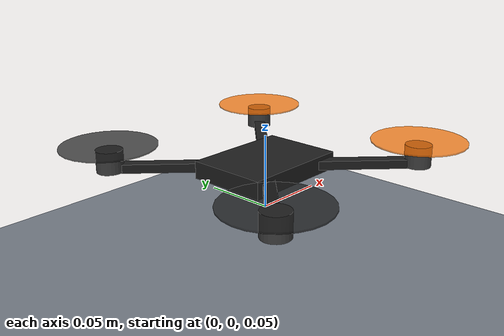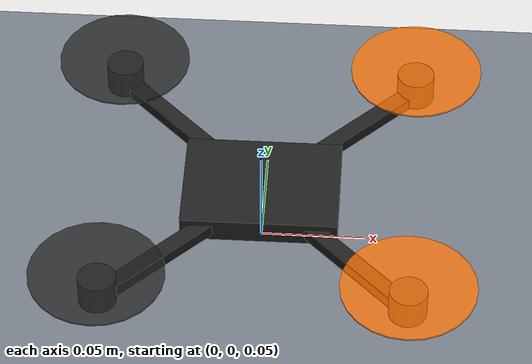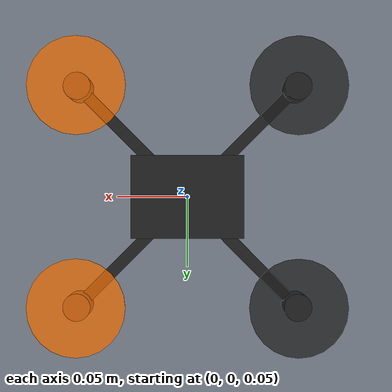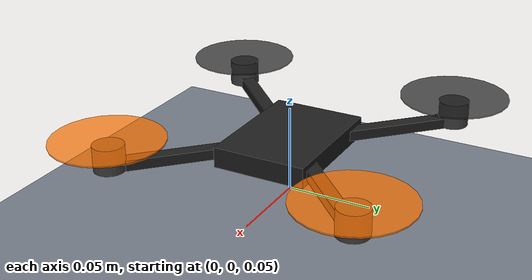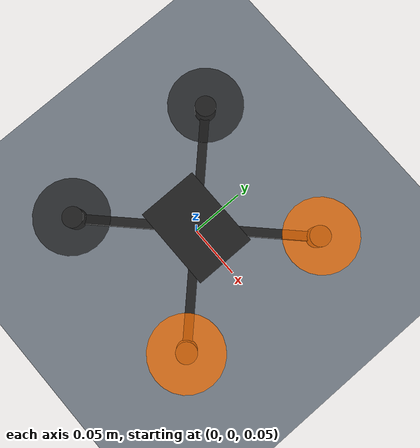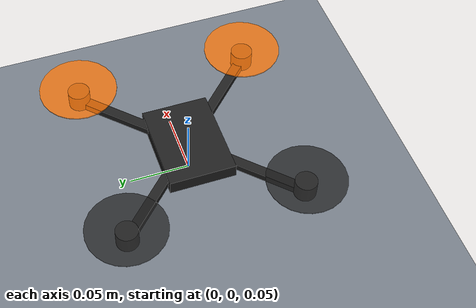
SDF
<?xml version="1.0"?>
<sdf version="1.10">
  <world name="crazyflie_world">
    <physics name="physics" type="ode">
      <max_step_size>0.002</max_step_size>
      <real_time_factor>1.0</real_time_factor>
    </physics>

    <plugin filename="gz-sim-physics-system"
            name="gz::sim::systems::Physics"/>
    <plugin filename="gz-sim-user-commands-system"
            name="gz::sim::systems::UserCommands"/>
    <plugin filename="gz-sim-scene-broadcaster-system"
            name="gz::sim::systems::SceneBroadcaster"/>

    <gravity>0 0 -9.80665</gravity>

    <scene>
      <ambient>0.45 0.45 0.45 1</ambient>
      <background>0.75 0.82 0.92 1</background>
      <shadows>true</shadows>
      <grid>true</grid>
    </scene>

    <light name="sun" type="directional">
      <pose>0 0 10 0 0 0</pose>
      <cast_shadows>true</cast_shadows>
      <diffuse>0.9 0.9 0.9 1</diffuse>
      <specular>0.2 0.2 0.2 1</specular>
      <direction>-0.5 0.2 -0.9</direction>
    </light>

    <model name="ground_plane">
      <static>true</static>
      <link name="ground_link">
        <collision name="collision">
          <geometry>
            <plane>
              <normal>0 0 1</normal>
              <size>10 10</size>
            </plane>
          </geometry>
        </collision>
        <visual name="visual">
          <geometry>
            <plane>
              <normal>0 0 1</normal>
              <size>10 10</size>
            </plane>
          </geometry>
          <material>
            <ambient>0.32 0.35 0.38 1</ambient>
            <diffuse>0.45 0.48 0.52 1</diffuse>
          </material>
        </visual>
      </link>
    </model>

    <include>
      <uri>model://crazyflie</uri>
      <name>crazyflie</name>
      <pose>0 0 0.08 0 0 0</pose>
    </include>
  </world>
</sdf>

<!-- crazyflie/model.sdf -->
<sdf version="1.10">
  <!--
    This is a visual placeholder, not a flight-dynamics model. It is static so
    the first Gazebo launch is deterministic while the controller is developed.
  -->
  <model name="crazyflie">
    <static>true</static>

    <link name="body">
      <visual name="center_deck">
        <geometry>
          <box>
            <size>0.075 0.055 0.012</size>
          </box>
        </geometry>
        <material>
          <ambient>0.08 0.08 0.08 1</ambient>
          <diffuse>0.12 0.12 0.12 1</diffuse>
        </material>
      </visual>

      <visual name="front_left_arm">
        <pose>0.046 0.046 0 0 0 0.785398</pose>
        <geometry><box><size>0.080 0.008 0.006</size></box></geometry>
        <material><diffuse>0.12 0.12 0.12 1</diffuse></material>
      </visual>
      <visual name="front_right_arm">
        <pose>0.046 -0.046 0 0 0 -0.785398</pose>
        <geometry><box><size>0.080 0.008 0.006</size></box></geometry>
        <material><diffuse>0.12 0.12 0.12 1</diffuse></material>
      </visual>
      <visual name="rear_left_arm">
        <pose>-0.046 0.046 0 0 0 -0.785398</pose>
        <geometry><box><size>0.080 0.008 0.006</size></box></geometry>
        <material><diffuse>0.12 0.12 0.12 1</diffuse></material>
      </visual>
      <visual name="rear_right_arm">
        <pose>-0.046 -0.046 0 0 0 0.785398</pose>
        <geometry><box><size>0.080 0.008 0.006</size></box></geometry>
        <material><diffuse>0.12 0.12 0.12 1</diffuse></material>
      </visual>

      <visual name="front_left_motor">
        <pose>0.072 0.072 0.005 0 0 0</pose>
        <geometry><cylinder><radius>0.009</radius><length>0.015</length></cylinder></geometry>
        <material><diffuse>0.25 0.25 0.25 1</diffuse></material>
      </visual>
      <visual name="front_right_motor">
        <pose>0.072 -0.072 0.005 0 0 0</pose>
        <geometry><cylinder><radius>0.009</radius><length>0.015</length></cylinder></geometry>
        <material><diffuse>0.25 0.25 0.25 1</diffuse></material>
      </visual>
      <visual name="rear_left_motor">
        <pose>-0.072 0.072 0.005 0 0 0</pose>
        <geometry><cylinder><radius>0.009</radius><length>0.015</length></cylinder></geometry>
        <material><diffuse>0.25 0.25 0.25 1</diffuse></material>
      </visual>
      <visual name="rear_right_motor">
        <pose>-0.072 -0.072 0.005 0 0 0</pose>
        <geometry><cylinder><radius>0.009</radius><length>0.015</length></cylinder></geometry>
        <material><diffuse>0.25 0.25 0.25 1</diffuse></material>
      </visual>

      <visual name="front_left_propeller">
        <pose>0.072 0.072 0.015 0 0 0</pose>
        <geometry><cylinder><radius>0.032</radius><length>0.001</length></cylinder></geometry>
        <material><diffuse>1 0.45 0 0.75</diffuse></material>
      </visual>
      <visual name="front_right_propeller">
        <pose>0.072 -0.072 0.015 0 0 0</pose>
        <geometry><cylinder><radius>0.032</radius><length>0.001</length></cylinder></geometry>
        <material><diffuse>1 0.45 0 0.75</diffuse></material>
      </visual>
      <visual name="rear_left_propeller">
        <pose>-0.072 0.072 0.015 0 0 0</pose>
        <geometry><cylinder><radius>0.032</radius><length>0.001</length></cylinder></geometry>
        <material><diffuse>0.12 0.12 0.12 0.75</diffuse></material>
      </visual>
      <visual name="rear_right_propeller">
        <pose>-0.072 -0.072 0.015 0 0 0</pose>
        <geometry><cylinder><radius>0.032</radius><length>0.001</length></cylinder></geometry>
        <material><diffuse>0.12 0.12 0.12 0.75</diffuse></material>
      </visual>
    </link>
  </model>
</sdf>
